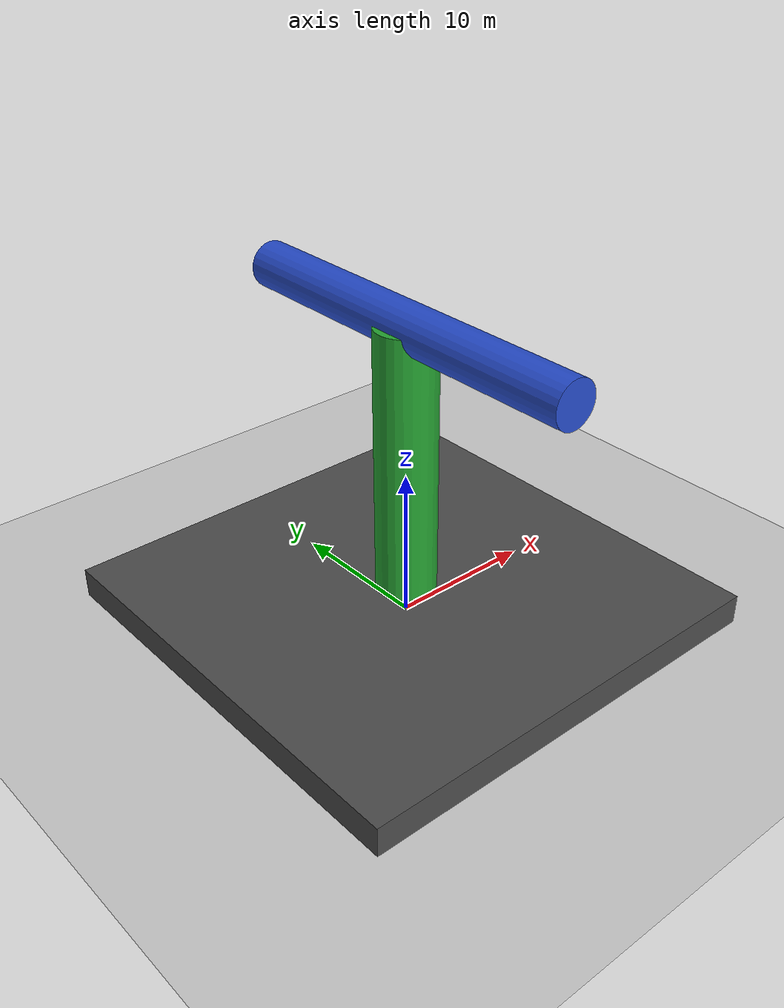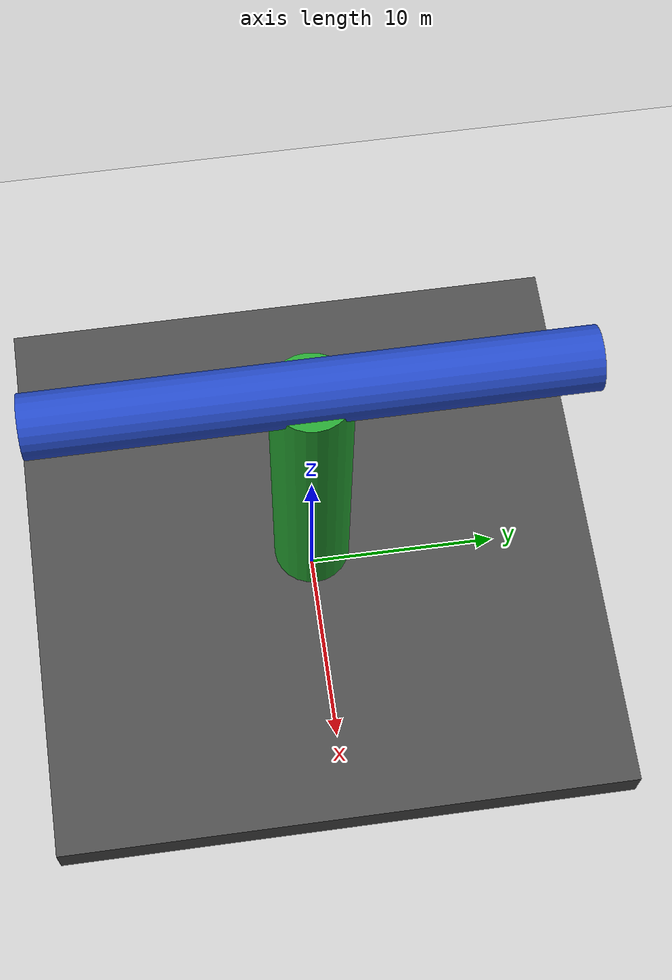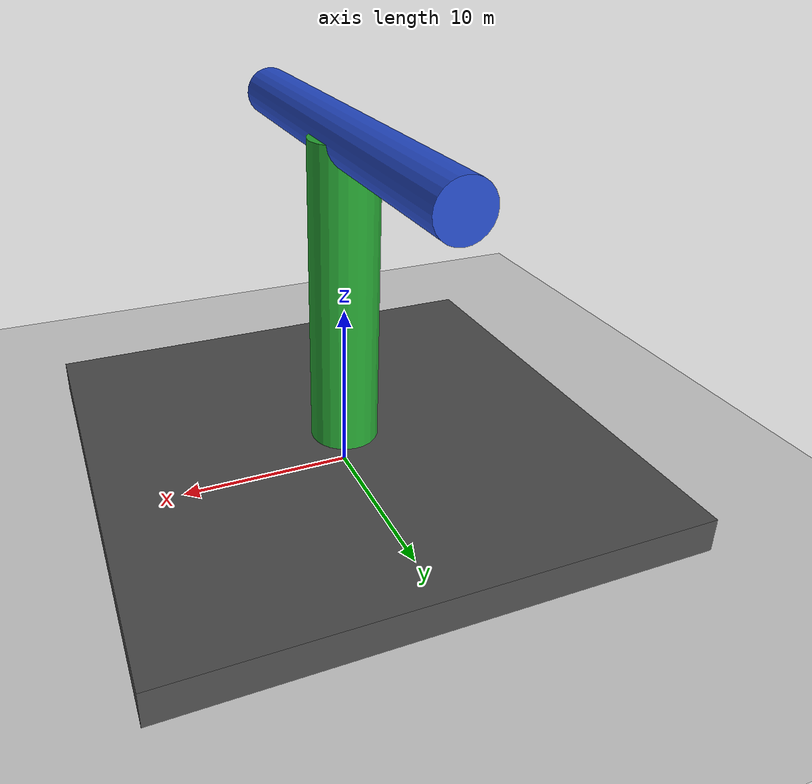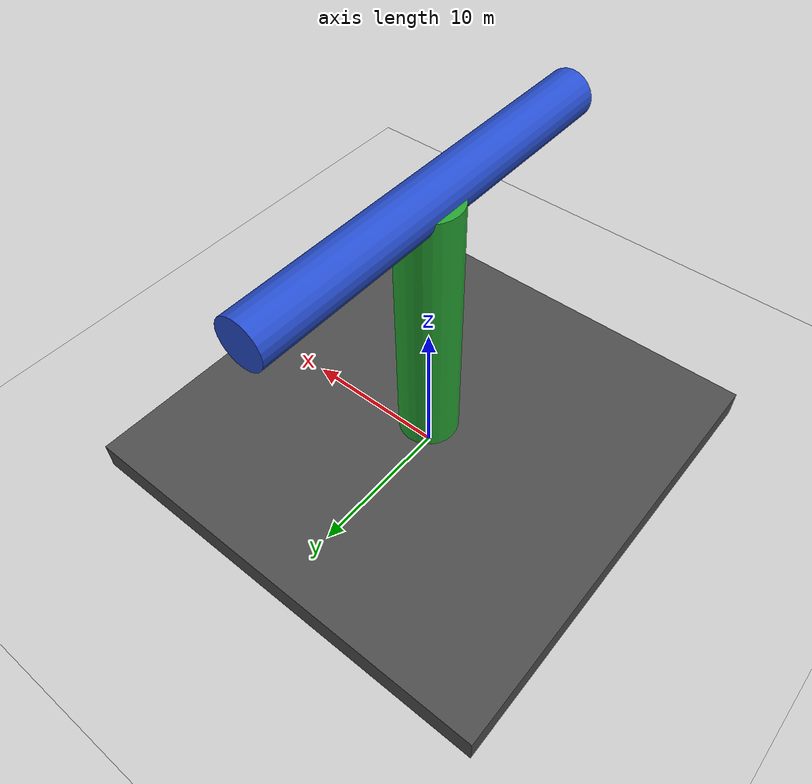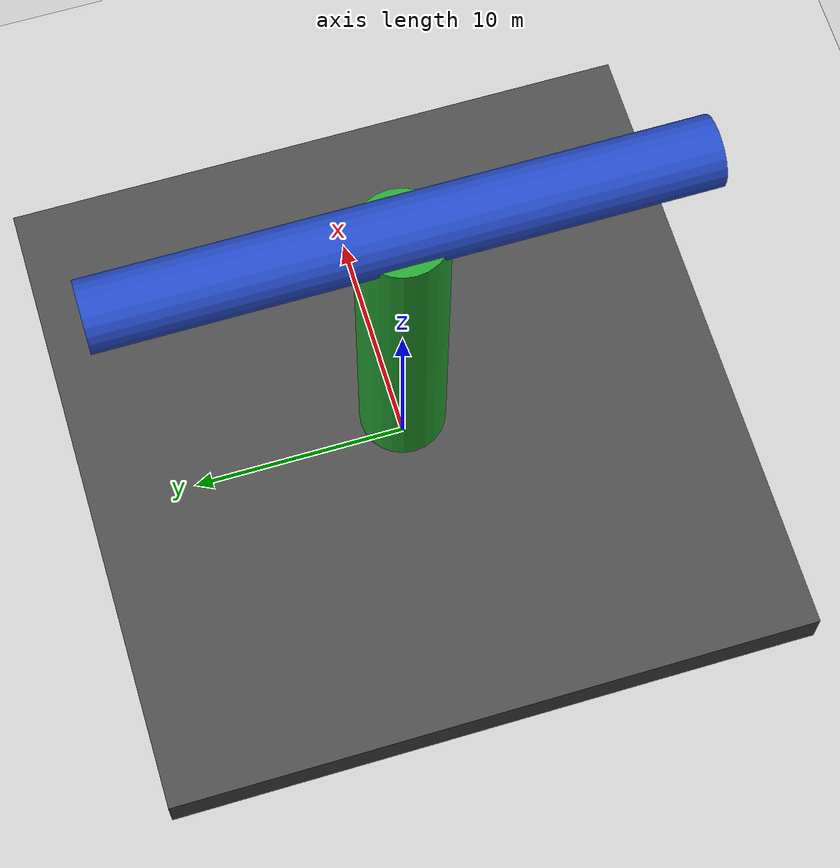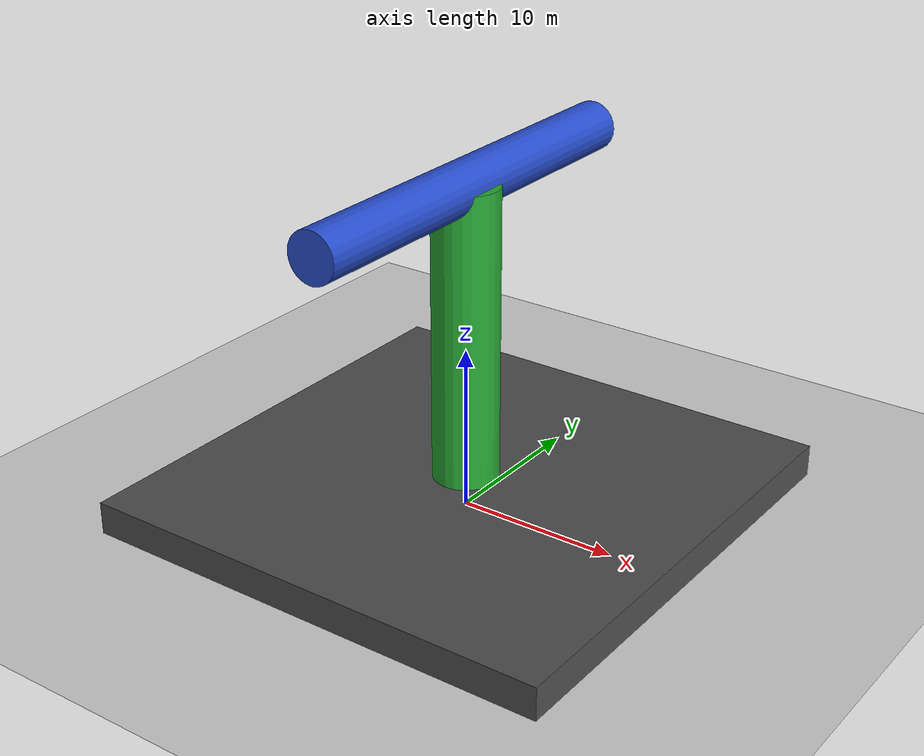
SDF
<?xml version='1.0'?>

<sdf version='1.9'>
<world name='joint_control_world'>

<!-- Essential systems normally coming from server.config -->
<!-- without these gz sim gui will be blank-->
<plugin filename="gz-sim-physics-system"
        name="gz::sim::systems::Physics">
</plugin>

<plugin filename="gz-sim-user-commands-system"
        name="gz::sim::systems::UserCommands">
</plugin>

<plugin filename="gz-sim-scene-broadcaster-system"
        name="gz::sim::systems::SceneBroadcaster">
</plugin>

<!-- Floor Plane -->
<model name="ground_plane">
    <static>true</static>
    <link name="link">
    <collision name="collision">
        <geometry>
        <plane>
            <normal>0 0 1</normal>
            <size>100 100</size>
        </plane>
        </geometry>
    </collision>
    <visual name="visual">
        <geometry>
        <plane>
            <normal>0 0 1</normal>
            <size>100 100</size>
        </plane>
        </geometry>
        <material>
        <ambient>0.8 0.8 0.8 1</ambient>
        <diffuse>0.8 0.8 0.8 1</diffuse>
        <specular>0.8 0.8 0.8 1</specular>
        </material>
    </visual>
    </link>
</model>

<model name="mega_t_joint_fixed">
  <pose>0 0 0 0 0 0</pose>

  <!-- BASE -->
  <link name="link_base">
    <pose>0 0 1.0 0 0 0</pose>
    <visual name="visual">
      <geometry><box><size>30 30 2.0</size></box></geometry>
      <material>
        <script>
          <uri>file://media/materials/scripts/gazebo.material</uri>
          <name>Gazebo/DarkGrey</name>
        </script>
      </material>
    </visual>
    <collision name="collision">
      <geometry><box><size>30 30 2.0</size></box></geometry>
    </collision>
  </link>

  <!-- POST -->
  <link name="link_post">
    <pose>0 0 11.0 0 0 0</pose>
    <visual name="visual">
      <geometry><cylinder><radius>2.0</radius><length>18.0</length></cylinder></geometry>
      <material>
        <script>
          <uri>file://media/materials/scripts/gazebo.material</uri>
          <name>Gazebo/Green</name>
        </script>
      </material>
    </visual>
    <collision name="collision">
      <geometry><cylinder><radius>2.0</radius><length>18.0</length></cylinder></geometry>
    </collision>
  </link>

  <!-- BAR (link frame placed at the JOINT anchor) -->
  <link name="link_bar">
    <!-- Put the link frame exactly at the joint: top of post -->
    <pose>0 0 20.0 0 0 0</pose>

    <visual name="visual">
      <!-- Rotate cylinder to lie along +Y; keep it centered at the link frame -->
      <pose>0 0 0 -1.5708 0 0</pose>
      <geometry><cylinder><radius>1.5</radius><length>26.0</length></cylinder></geometry>
      <material>
        <script>
          <uri>file://media/materials/scripts/gazebo.material</uri>
          <name>Gazebo/Blue</name>
        </script>
      </material>
    </visual>

    <collision name="collision">
      <pose>0 0 0 -1.5708 0 0</pose>
      <geometry><cylinder><radius>1.5</radius><length>26.0</length></cylinder></geometry>
    </collision>
  </link>

  <!-- JOINTS -->
  <joint name="joint_0" type="fixed">
    <parent>link_base</parent>
    <child>link_post</child>
    <pose>0 0 -5.0 0 0 0</pose>
  </joint>

  <joint name="joint_1" type="revolute">
    <parent>link_post</parent>
    <child>link_bar</child>

    <!-- Joint anchor at top of post (same as link_bar pose) -->
    <pose>0 0 0.4 0 0 0</pose>

    <axis>
      <xyz>0 0 1</xyz>
      <limit>
        <lower>-1.79769e+308</lower>
        <upper>1.79769e+308</upper>
        <effort>5000</effort>
        <velocity>1.0</velocity>
      </limit>
      <dynamics><damping>10.0</damping></dynamics>
    </axis>
  </joint>

  <static>0</static>

  <plugin filename="JointControl" name="gz::sim::JointControl">
    <joint_name>joint_1</joint_name>

    <!-- posssible mode:
          velocity
          force
          position
    -->
    <mode>velocity</mode>

    <!-- velocity mode (rad/sec)-->
    <cmd_vel>1.0</cmd_vel>

    <!-- force mode (Nm)-->
    <cmd_torque>15.0</cmd_torque>

    <!--position mode (radian)-->
    <pos_a>0.523599</pos_a> <!-- 30 deg-->
    <pos_b>2.0944</pos_b> <!-- 120 deg-->
    <wait_time>6</wait_time>
    <!-- PD control-->
    <p_gain>10.0</p_gain>
    <d_gain>1.0</d_gain>
    <max_torque>10.0</max_torque>
    <pos_tolerence>0.1</pos_tolerence>
  </plugin>
</model>

</world>
</sdf>
